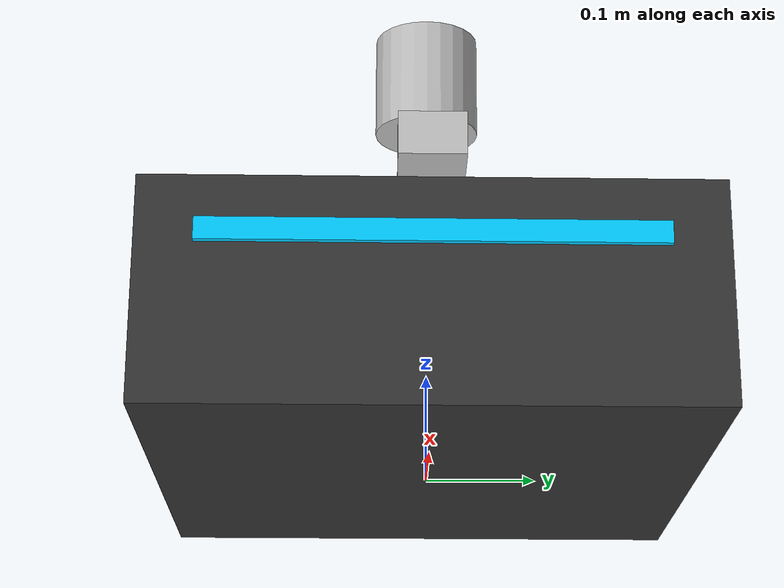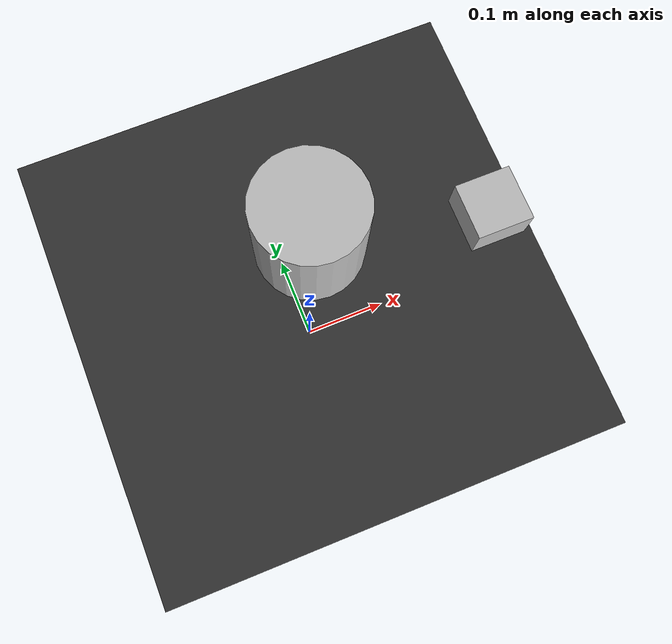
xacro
<?xml version="1.0"?>
<robot name="meistar_bot" xmlns:xacro="http://www.ros.org/wiki/xacro">

  <!-- Include component Xacro files -->
  <xacro:include filename="chassis.xacro" />
  <xacro:include filename="lidar.xacro" />
  <xacro:include filename="camera.xacro" />
  <xacro:include filename="gazebo.xacro" />

</robot>

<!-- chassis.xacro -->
<robot xmlns:xacro="http://www.ros.org/wiki/xacro">

  <!-- Materials -->
  <material name="carbon_grey">
    <color rgba="0.2 0.2 0.2 1"/>
  </material>
  <material name="neon_blue">
    <color rgba="0.0 0.8 1.0 1"/>
  </material>

  <!-- Base Link -->
  <link name="base_link">
    <visual>
      <origin xyz="0 0 0" rpy="0 0 0"/>
      <geometry>
        <box size="0.5 0.5 0.2"/>
      </geometry>
      <material name="carbon_grey"/>
    </visual>
    <!-- Accent Visual (Decorative strip) -->
    <visual>
      <origin xyz="0.251 0 0.05" rpy="0 0 0"/>
      <geometry>
        <box size="0.01 0.4 0.02"/>
      </geometry>
      <material name="neon_blue"/>
    </visual>
    <collision>
      <geometry>
        <box size="0.5 0.5 0.2"/>
      </geometry>
    </collision>
    <inertial>
      <mass value="10.0"/>
      <origin xyz="0 0 0" rpy="0 0 0"/>
      <inertia ixx="0.2" ixy="0" ixz="0" iyy="0.2" iyz="0" izz="0.4"/>
    </inertial>
  </link>

  <gazebo reference="base_link">
    <visual>
      <material>
        <ambient>0.1 0.1 0.1 1</ambient>
        <diffuse>0.2 0.2 0.2 1</diffuse>
        <specular>0.5 0.5 0.5 1</specular>
      </material>
    </visual>
    <mu1>0.0</mu1>
    <mu2>0.0</mu2>
  </gazebo>

  <!-- Footprint (Ground projection) -->
  <link name="base_footprint"/>
  <joint name="base_footprint_joint" type="fixed">
    <parent link="base_footprint"/>
    <child link="base_link"/>
    <origin xyz="0 0 0.1" rpy="0 0 0"/>
  </joint>

</robot>

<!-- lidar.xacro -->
<robot xmlns:xacro="http://www.ros.org/wiki/xacro">

  <!-- Lidar Link -->
  <link name="lidar_link">
    <visual>
      <geometry>
        <cylinder radius="0.05" length="0.1"/>
      </geometry>
      <material name="silver">
        <color rgba="0.75 0.75 0.75 1"/>
      </material>
    </visual>
    <collision>
      <geometry>
        <cylinder radius="0.05" length="0.1"/>
      </geometry>
    </collision>
  </link>

  <gazebo reference="lidar_link">
    <visual>
      <material>
        <ambient>0.5 0.5 0.5 1</ambient>
        <diffuse>0.75 0.75 0.75 1</diffuse>
        <specular>0.8 0.8 0.8 1</specular>
      </material>
    </visual>
  </gazebo>

  <!-- lidar は base_link の天面 (half-height 0.1) から十分上に離す。
       すぐ上 (0.15) に置くと水平レイが箱の角を捉えて 0.17m の擬似障害物になり、
       global_costmap の inflation がロボット自身の開始セルを埋めて
       "Start occupied" になる。 -->
  <joint name="lidar_joint" type="fixed">
    <parent link="base_link"/>
    <child link="lidar_link"/>
    <origin xyz="0 0 0.30" rpy="0 0 0"/>
  </joint>

  <!-- Gazebo Sensor Plugin -->
  <gazebo reference="lidar_link">
    <sensor name="lidar" type="gpu_lidar">
      <topic>/scan</topic>
      <update_rate>10</update_rate>
      <gz_frame_id>lidar_link</gz_frame_id>
      <lidar>
        <scan>
          <horizontal>
            <samples>640</samples>
            <resolution>1</resolution>
            <min_angle>-3.14</min_angle>
            <max_angle>3.14</max_angle>
          </horizontal>
        </scan>
        <range>
          <min>0.08</min>
          <max>10.0</max>
          <resolution>0.01</resolution>
        </range>
      </lidar>
      <always_on>1</always_on>
      <visualize>false</visualize>
    </sensor>
  </gazebo>

</robot>

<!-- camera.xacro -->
<robot xmlns:xacro="http://www.ros.org/wiki/xacro">

  <!-- Camera Link (robot's-eye view, facing forward +X) -->
  <link name="camera_link">
    <visual>
      <geometry>
        <box size="0.06 0.06 0.04"/>
      </geometry>
      <material name="silver">
        <color rgba="0.75 0.75 0.75 1"/>
      </material>
    </visual>
    <collision>
      <geometry>
        <box size="0.06 0.06 0.04"/>
      </geometry>
    </collision>
  </link>

  <gazebo reference="camera_link">
    <visual>
      <material>
        <ambient>0.5 0.5 0.5 1</ambient>
        <diffuse>0.75 0.75 0.75 1</diffuse>
        <specular>0.8 0.8 0.8 1</specular>
      </material>
    </visual>
  </gazebo>

  <joint name="camera_joint" type="fixed">
    <parent link="base_link"/>
    <child link="camera_link"/>
    <origin xyz="0.20 0 0.15" rpy="0 0 0"/>
  </joint>

  <!-- Gazebo Camera Sensor -->
  <gazebo reference="camera_link">
    <sensor name="camera" type="camera">
      <topic>/camera_image</topic>
      <update_rate>10</update_rate>
      <always_on>1</always_on>
      <visualize>false</visualize>
      <camera>
        <horizontal_fov>1.047</horizontal_fov>
        <image>
          <width>640</width>
          <height>480</height>
          <format>R8G8B8</format>
        </image>
        <clip>
          <near>0.05</near>
          <far>30.0</far>
        </clip>
      </camera>
    </sensor>
  </gazebo>

</robot>
